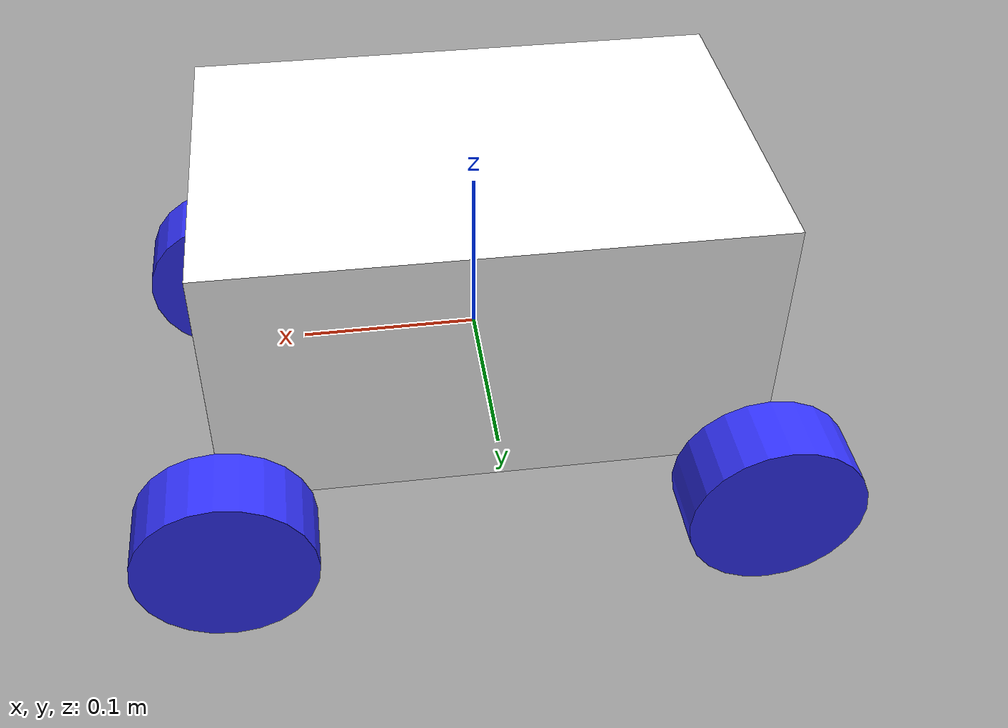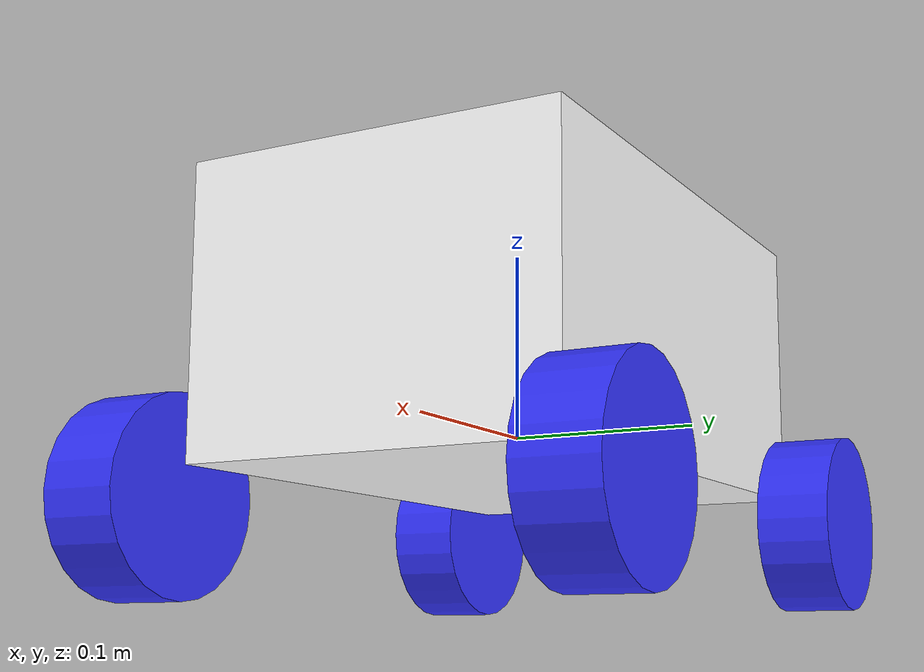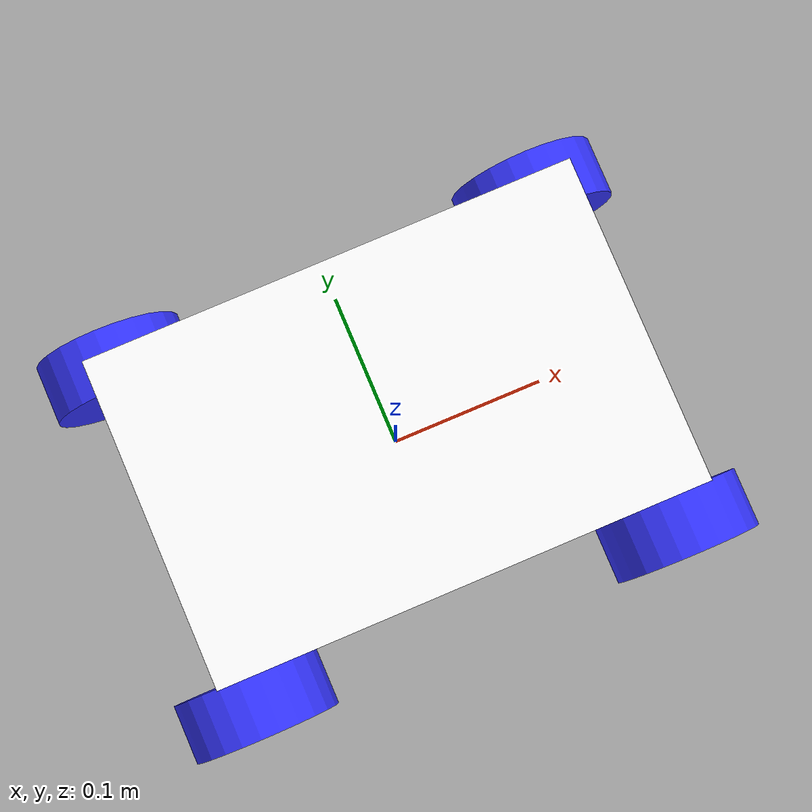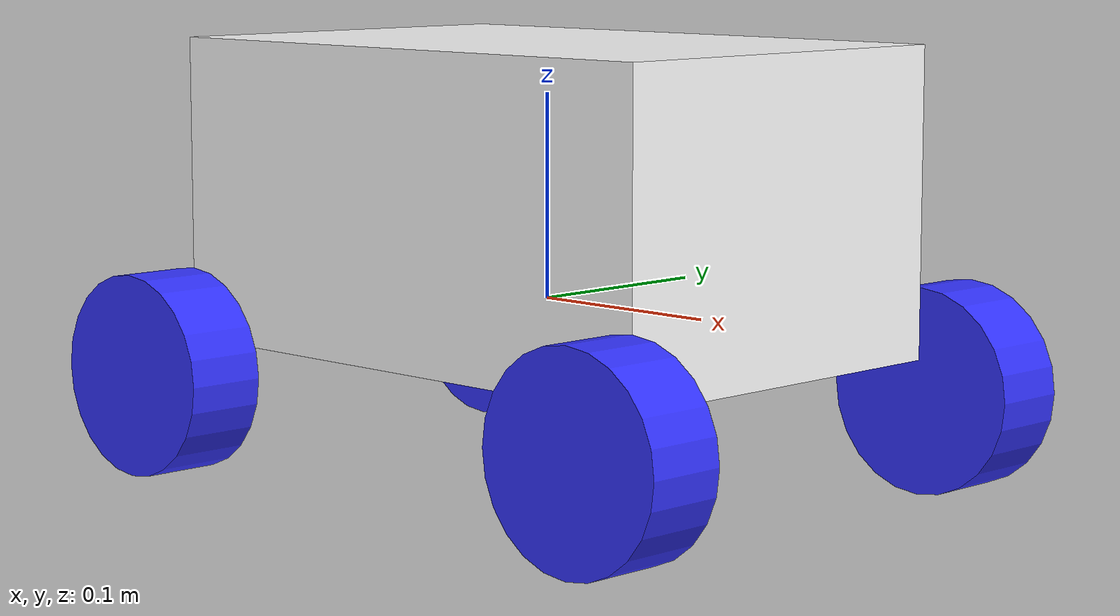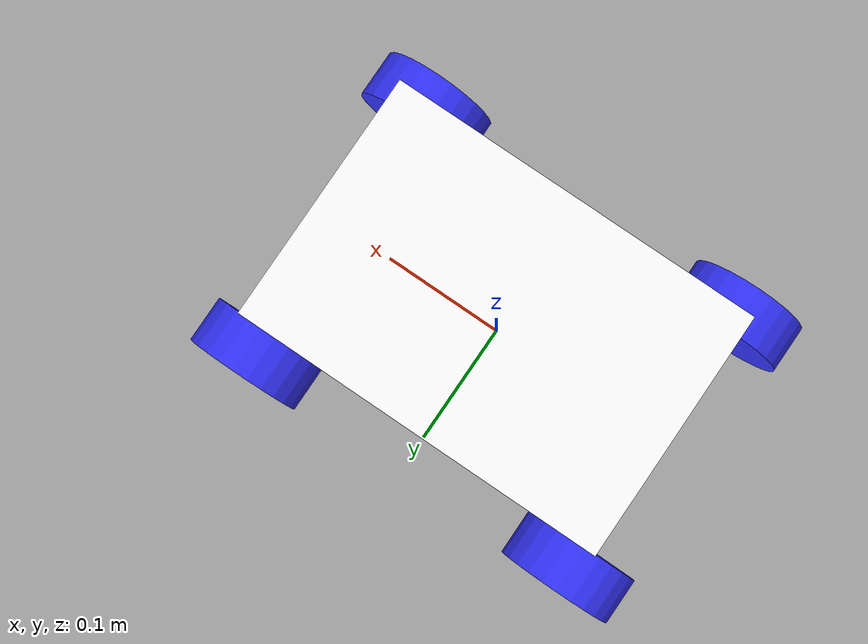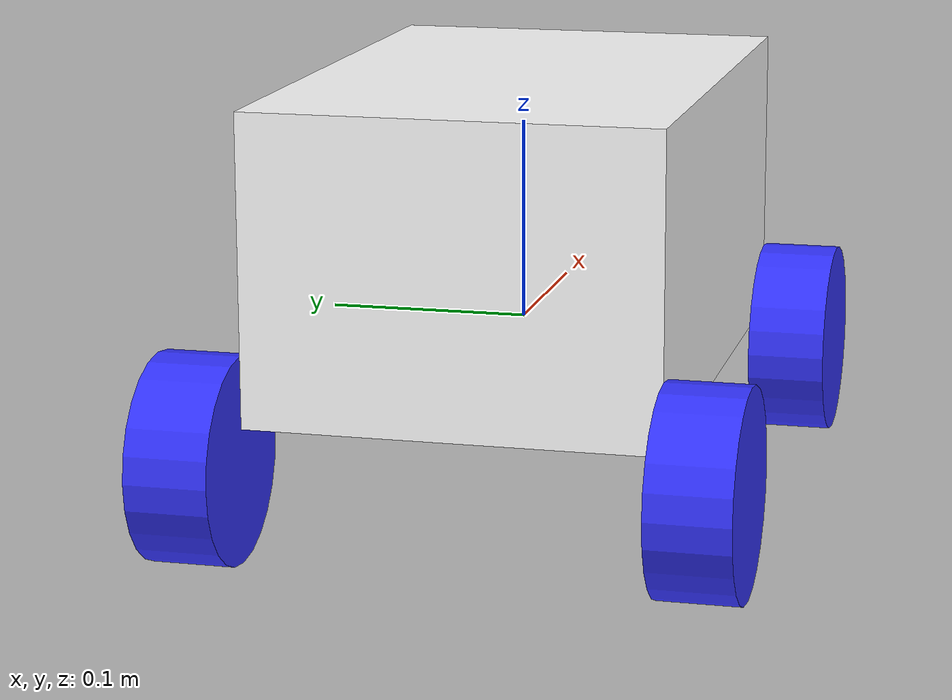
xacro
<?xml version="1.0"?>
<robot xmlns:xacro="http://www.ros.org/wiki/xacro" >

    <xacro:include filename="inertial_macros.xacro"/>

    <material name="white">
    <color rgba="1 1 1 1"/>
</material>

<material name="orange">
    <color rgba="1 0.3 0.1 1"/>
</material>

<material name="blue">
    <color rgba="0.2 0.2 1 1"/>
</material>

<material name="black">
    <color rgba="0 0 0 1"/>
</material>

<!-- BASE -->

<link name="base_link">
</link>

<!-- CHASSIS -->

<joint name="chassis_joint" type="fixed">
    <parent link="base_link"/>
    <child link="chassis_link"/>
    <origin xyz="-0.15 0 0"/>
</joint>

<link name="chassis_link">

    <visual>
        <origin xyz="0.15 0 0.05" rpy="0 0 0"/>
        <geometry>
            <box size="0.3 0.2 0.15"/>
        </geometry>
        <material name="white"/>
    </visual>

    <collision>
        <origin xyz="0.15 0 0.05" rpy="0 0 0"/>
        <geometry>
            <box size="0.3 0.2 0.15"/>
        </geometry>
    </collision>

    <xacro:inertial_box mass="0.5" x="0.3" y="0.3" z="0.15">
        <origin xyz="0.15 0 0.05" rpy="0 0 0"/>
    </xacro:inertial_box>

</link>

<!-- LEFT BACK WHEEL -->

<joint name="left_back_wheel_joint" type="continuous">
    <parent link="base_link"/>
    <child link="left_back_wheel_link"/>
    <origin xyz="-0.15 0.12 -0.04" rpy="-${pi/2} 0 0"/>
    <axis xyz="0 0 1"/>
</joint>

<link name="left_back_wheel_link">
    <visual>
        <geometry>
            <cylinder length="0.04" radius="0.05" />
        </geometry>
        <material name="blue"/>
    </visual>
    <collision>
        <geometry>
            <cylinder length="0.04" radius="0.05" />
        </geometry>
        <material name="blue"/>
    </collision>

    <xacro:inertial_cylinder mass="0.1" length="0.04" radius="0.03">
        <origin xyz="-0.15 0.12 -0.04" rpy="-${pi/2} 0 0"/>
    </xacro:inertial_cylinder>

</link>

<!-- RIGHT BACK WHEEL -->

<joint name="right_back_wheel_joint" type="continuous">
    <parent link="base_link"/>
    <child link="right_back_wheel_link"/>
    <origin xyz="-0.15 -0.12 -0.04" rpy="${pi/2} 0 0"/>
    <axis xyz="0 0 -1"/>
</joint>

<link name="right_back_wheel_link">
    <visual>
        <geometry>
            <cylinder length="0.04" radius="0.05" />
        </geometry>
        <material name="blue"/>
    </visual>
    <collision>
        <geometry>
            <cylinder length="0.04" radius="0.05" />
        </geometry>
        <material name="blue"/>
    </collision>

    <xacro:inertial_cylinder mass="0.1" length="0.04" radius="0.03">
        <origin xyz="-0.15 -0.12 -0.04" rpy="${pi/2} 0 0"/>
    </xacro:inertial_cylinder>

</link>

<!-- LEFT FRONT WHEEL -->

<joint name="left_front_wheel_joint" type="continuous">
    <parent link="base_link"/>
    <child link="left_front_wheel_link"/>
    <origin xyz="0.15 0.12 -0.04" rpy="-${pi/2} 0 0"/>
    <axis xyz="0 0 1"/>
</joint>

<link name="left_front_wheel_link">
    <visual>
        <geometry>
            <cylinder length="0.04" radius="0.05" />
        </geometry>
        <material name="blue"/>
    </visual>
    <collision>
        <geometry>
            <cylinder length="0.04" radius="0.05" />
        </geometry>
        <material name="blue"/>
    </collision>
    <xacro:inertial_cylinder mass="0.1" length="0.04" radius="0.03">
        <origin xyz="0.15 0.12 -0.04" rpy="-${pi/2} 0 0"/>
    </xacro:inertial_cylinder>

</link>

<!-- RIGHT FRONT WHEEL -->

<joint name="right_front_wheel_joint" type="continuous">
    <parent link="base_link"/>
    <child link="right_front_wheel_link"/>
    <origin xyz="0.15 -0.12 -0.04" rpy="${pi/2} 0 0"/>
    <axis xyz="0 0 -1"/>
</joint>

<link name="right_front_wheel_link">
    <visual>
        <geometry>
            <cylinder length="0.04" radius="0.05" />
        </geometry>
        <material name="blue"/>
    </visual>
    <collision>
        <geometry>
            <cylinder length="0.04" radius="0.05" />
        </geometry>
        <material name="blue"/>
    </collision>

    <xacro:inertial_cylinder mass="0.1" length="0.04" radius="0.03">
        <origin xyz="0.15 -0.12 -0.04" rpy="${pi/2} 0 0"/>
    </xacro:inertial_cylinder>

</link>

</robot>
